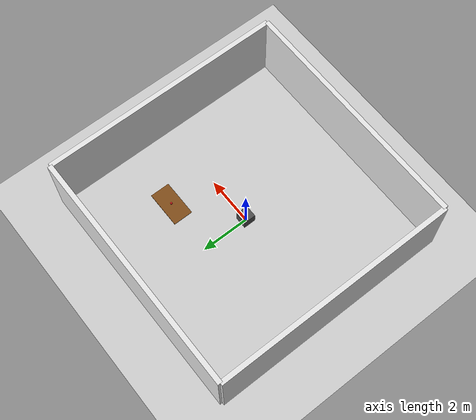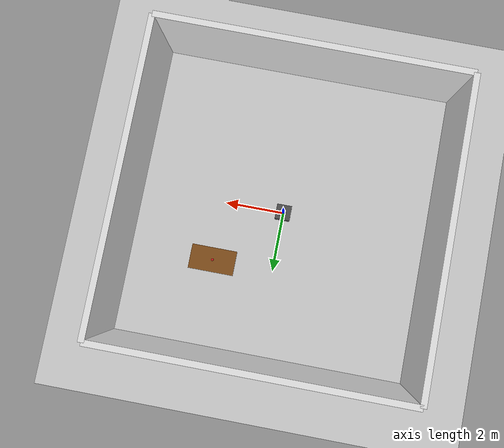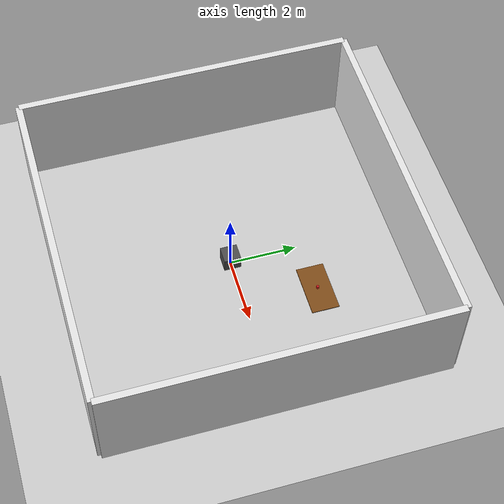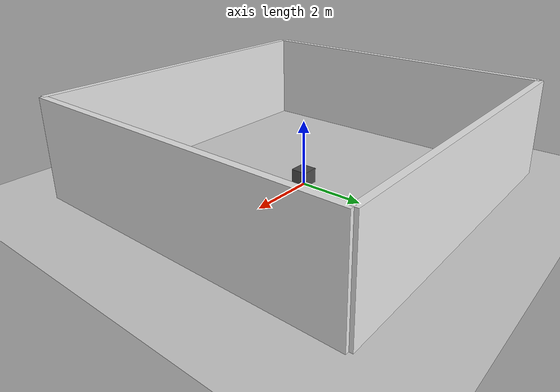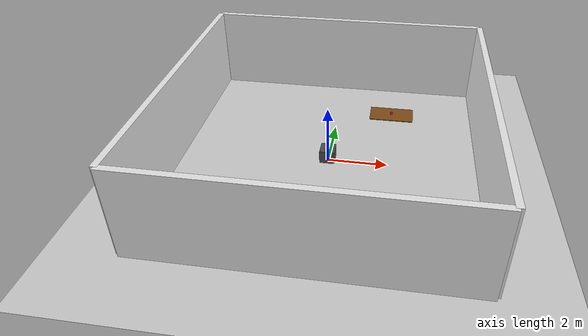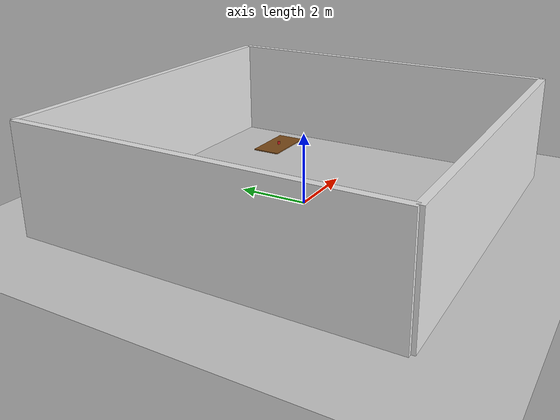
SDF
<?xml version="1.0"?>
<!-- VLA Demo World for Educational Module -->
<sdf version="1.6">
  <world name="vla_demo_world">

    <!-- Physics -->
    <physics name="default_physics" default="true" type="ode">
      <max_step_size>0.001</max_step_size>
      <real_time_factor>1.0</real_time_factor>
      <real_time_update_rate>1000</real_time_update_rate>
    </physics>

    <!-- Lighting -->
    <include>
      <uri>model://sun</uri>
    </include>

    <!-- Ground Plane -->
    <include>
      <uri>model://ground_plane</uri>
    </include>

    <!-- Room Boundaries (simplified) -->
    <model name="room">
      <static>true</static>
      <pose>0 0 0 0 0 0</pose>

      <!-- Floor -->
      <link name="floor">
        <collision name="floor_collision">
          <geometry>
            <box>
              <size>10 10 0.1</size>
            </box>
          </geometry>
        </collision>
        <visual name="floor_visual">
          <geometry>
            <box>
              <size>10 10 0.1</size>
            </box>
          </geometry>
          <material>
            <ambient>0.8 0.8 0.8 1.0</ambient>
            <diffuse>0.8 0.8 0.8 1.0</diffuse>
          </material>
        </visual>
      </link>

      <!-- North Wall -->
      <link name="wall_north">
        <pose>0 5 1.5 0 0 0</pose>
        <collision name="collision">
          <geometry>
            <box>
              <size>10 0.2 3</size>
            </box>
          </geometry>
        </collision>
        <visual name="visual">
          <geometry>
            <box>
              <size>10 0.2 3</size>
            </box>
          </geometry>
          <material>
            <ambient>0.9 0.9 0.9 1.0</ambient>
            <diffuse>0.9 0.9 0.9 1.0</diffuse>
          </material>
        </visual>
      </link>

      <!-- South Wall -->
      <link name="wall_south">
        <pose>0 -5 1.5 0 0 0</pose>
        <collision name="collision">
          <geometry>
            <box>
              <size>10 0.2 3</size>
            </box>
          </geometry>
        </collision>
        <visual name="visual">
          <geometry>
            <box>
              <size>10 0.2 3</size>
            </box>
          </geometry>
          <material>
            <ambient>0.9 0.9 0.9 1.0</ambient>
            <diffuse>0.9 0.9 0.9 1.0</diffuse>
          </material>
        </visual>
      </link>

      <!-- East Wall -->
      <link name="wall_east">
        <pose>5 0 1.5 0 0 0</pose>
        <collision name="collision">
          <geometry>
            <box>
              <size>0.2 10 3</size>
            </box>
          </geometry>
        </collision>
        <visual name="visual">
          <geometry>
            <box>
              <size>0.2 10 3</size>
            </box>
          </geometry>
          <material>
            <ambient>0.9 0.9 0.9 1.0</ambient>
            <diffuse>0.9 0.9 0.9 1.0</diffuse>
          </material>
        </visual>
      </link>

      <!-- West Wall -->
      <link name="wall_west">
        <pose>-5 0 1.5 0 0 0</pose>
        <collision name="collision">
          <geometry>
            <box>
              <size>0.2 10 3</size>
            </box>
          </geometry>
        </collision>
        <visual name="visual">
          <geometry>
            <box>
              <size>0.2 10 3</size>
            </box>
          </geometry>
          <material>
            <ambient>0.9 0.9 0.9 1.0</ambient>
            <diffuse>0.9 0.9 0.9 1.0</diffuse>
          </material>
        </visual>
      </link>
    </model>

    <!-- Table -->
    <model name="table">
      <static>true</static>
      <pose>2 2 0 0 0 0</pose>
      <link name="link">
        <collision name="surface">
          <pose>0 0 0.75 0 0 0</pose>
          <geometry>
            <box>
              <size>1.5 0.8 0.03</size>
            </box>
          </geometry>
        </collision>
        <visual name="visual">
          <pose>0 0 0.75 0 0 0</pose>
          <geometry>
            <box>
              <size>1.5 0.8 0.03</size>
            </box>
          </geometry>
          <material>
            <ambient>0.5 0.3 0.1 1.0</ambient>
            <diffuse>0.5 0.3 0.1 1.0</diffuse>
          </material>
        </visual>
      </link>
    </model>

    <!-- Red Cup (target object) -->
    <model name="red_cup">
      <static>false</static>
      <pose>2 2 0.8 0 0 0</pose>
      <link name="link">
        <collision name="collision">
          <geometry>
            <cylinder>
              <radius>0.04</radius>
              <length>0.1</length>
            </cylinder>
          </geometry>
        </collision>
        <visual name="visual">
          <geometry>
            <cylinder>
              <radius>0.04</radius>
              <length>0.1</length>
            </cylinder>
          </geometry>
          <material>
            <ambient>0.8 0.1 0.1 1.0</ambient>
            <diffuse>0.8 0.1 0.1 1.0</diffuse>
          </material>
        </visual>
        <inertial>
          <mass>0.05</mass>
          <inertia>
            <ixx>0.0001</ixx>
            <iyy>0.0001</iyy>
            <izz>0.0001</izz>
          </inertia>
        </inertial>
      </link>
    </model>

    <!-- Obstacle Box -->
    <model name="obstacle">
      <static>true</static>
      <pose>0 0 0 0 0 0</pose>
      <link name="link">
        <collision name="collision">
          <pose>0 0 0.25 0 0 0</pose>
          <geometry>
            <box>
              <size>0.5 0.5 0.5</size>
            </box>
          </geometry>
        </collision>
        <visual name="visual">
          <pose>0 0 0.25 0 0 0</pose>
          <geometry>
            <box>
              <size>0.5 0.5 0.5</size>
            </box>
          </geometry>
          <material>
            <ambient>0.3 0.3 0.3 1.0</ambient>
            <diffuse>0.3 0.3 0.3 1.0</diffuse>
          </material>
        </visual>
      </link>
    </model>

  </world>
</sdf>
